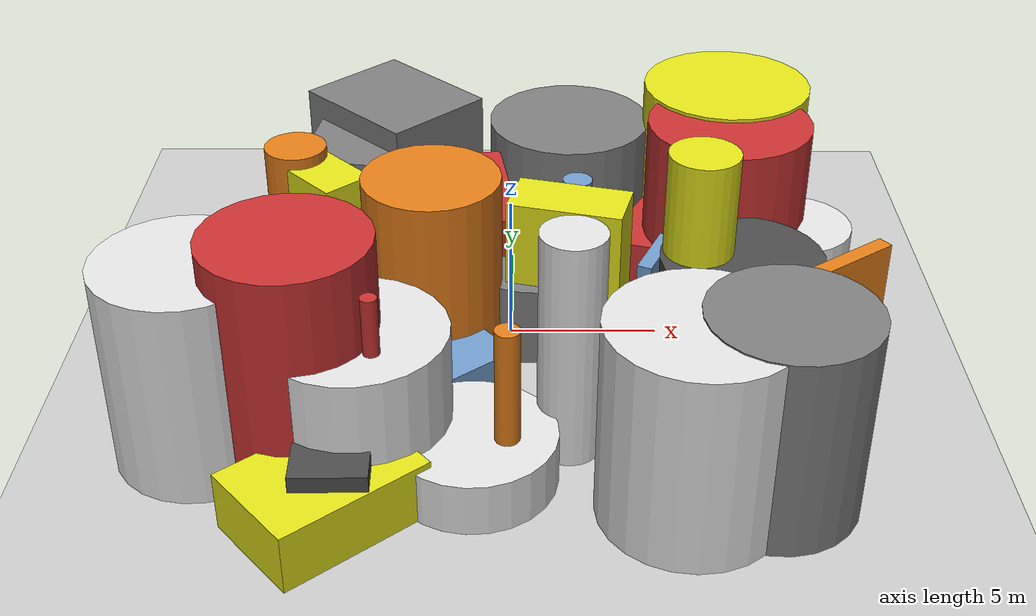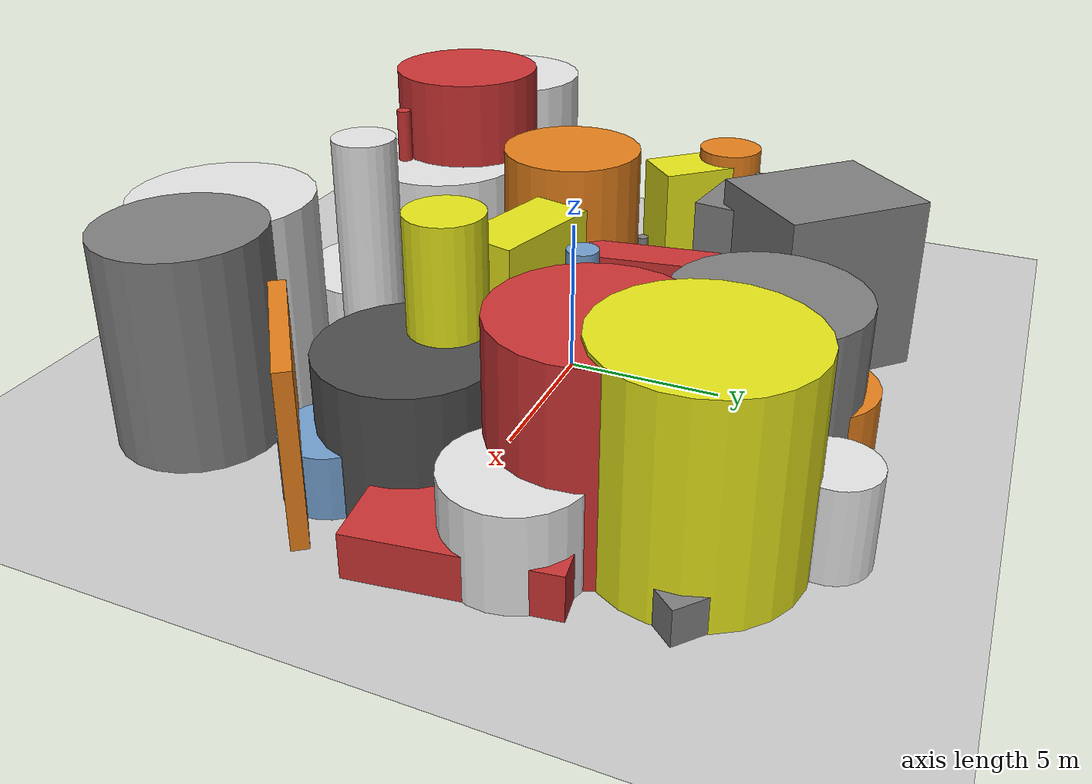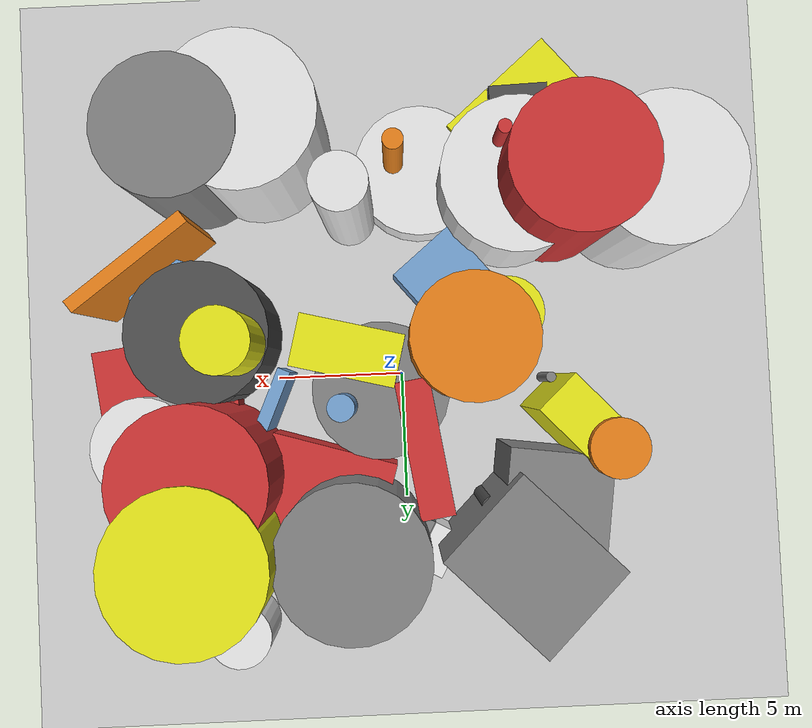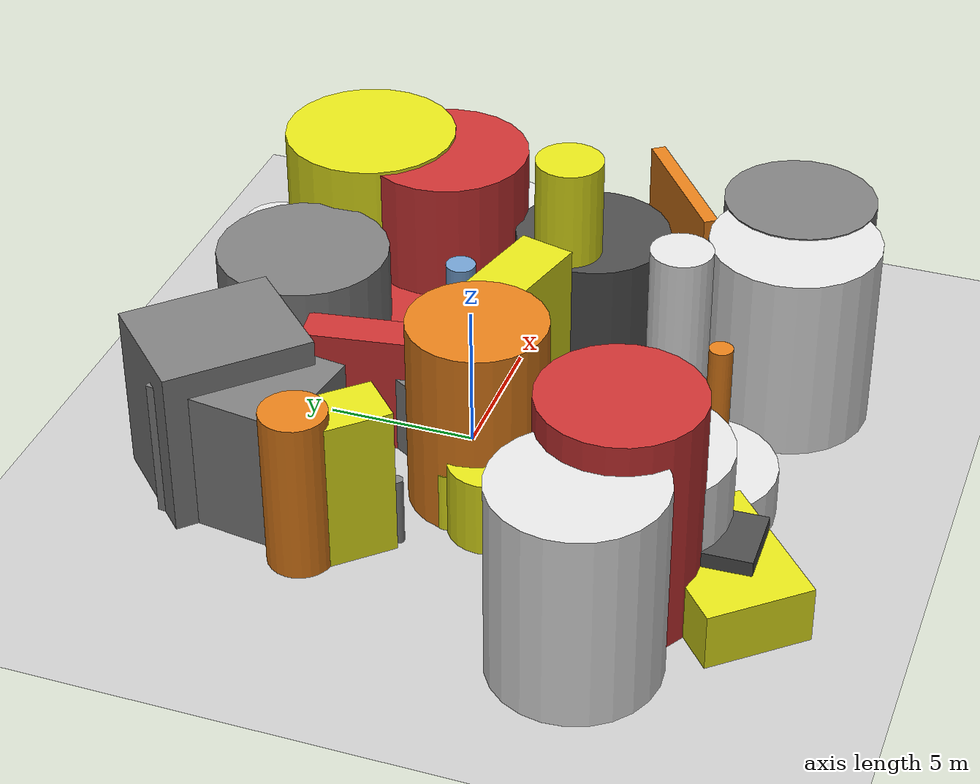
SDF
<?xml version='1.0'?>
<sdf version='1.6'>
  <world name='default'>
    <!-- Sun light -->
    <light name='sun' type='directional'>
      <cast_shadows>1</cast_shadows>
      <pose>0 0 10 0 0 0</pose>
      <diffuse>0.8 0.8 0.8 1</diffuse>
      <specular>0.2 0.2 0.2 1</specular>
      <attenuation>
        <range>1000</range>
        <constant>0.9</constant>
        <linear>0.01</linear>
        <quadratic>0.001</quadratic>
      </attenuation>
      <direction>-0.5 0.1 -0.9</direction>
    </light>

    <!-- Ground plane -->
    <model name='ground_plane'>
      <static>1</static>
      <link name='link'>
        <collision name='collision'>
          <geometry>
            <plane>
              <normal>0 0 1</normal>
              <size>100 100</size>
            </plane>
          </geometry>
          <surface>
            <contact>
              <collide_bitmask>65535</collide_bitmask>
              <ode/>
            </contact>
            <friction>
              <ode>
                <mu>100</mu>
                <mu2>50</mu2>
              </ode>
              <torsional><ode/></torsional>
            </friction>
            <bounce/>
          </surface>
          <max_contacts>10</max_contacts>
        </collision>
        <visual name='visual'>
          <cast_shadows>0</cast_shadows>
          <geometry>
            <plane>
              <normal>0 0 1</normal>
              <size>100 100</size>
            </plane>
          </geometry>
          <material>
            <script>
              <uri>file://media/materials/scripts/gazebo.material</uri>
              <n>Gazebo/Grey</n>
            </script>
          </material>
        </visual>
      </link>
    </model>

    <!-- Environment -->
    <magnetic_field>6e-06 2.3e-05 -4.2e-05</magnetic_field>
    <atmosphere type='adiabatic'/>
    <physics name='default_physics' default='0' type='ode'>
      <gravity>0 0 -9.8</gravity>
      <max_step_size>0.004</max_step_size>
      <real_time_factor>1</real_time_factor>
      <real_time_update_rate>250</real_time_update_rate>
    </physics>
    <scene>
      <ambient>0.4 0.4 0.4 1</ambient>
      <background>0.7 0.7 0.7 1</background>
      <shadows>1</shadows>
    </scene>
    <wind/>
    <spherical_coordinates>
      <surface_model>EARTH_WGS84</surface_model>
      <latitude_deg>0</latitude_deg>
      <longitude_deg>0</longitude_deg>
      <elevation>0</elevation>
      <heading_deg>0</heading_deg>
    </spherical_coordinates>

    <!-- ============ OBSTACLES (46) ============ -->
    <model name='obs_00'>
      <static>1</static>
      <link name='link'>
        <visual name='visual'>
          <geometry>
            <cylinder>
              <radius>2.5856</radius>
              <length>7.7587</length>
            </cylinder>
          </geometry>
          <material>
            <script>
              <n>Gazebo/Red</n>
              <uri>file://media/materials/scripts/gazebo.material</uri>
            </script>
            <ambient>0.8 0.2 0.2 1</ambient>
          </material>
        </visual>
        <collision name='collision'>
          <geometry>
            <cylinder>
              <radius>2.5856</radius>
              <length>7.7587</length>
            </cylinder>
          </geometry>
          <max_contacts>10</max_contacts>
          <surface>
            <contact><ode/></contact>
            <bounce/>
            <friction>
              <ode><mu>1</mu><mu2>1</mu2></ode>
              <torsional><ode/></torsional>
            </friction>
          </surface>
        </collision>
      </link>
      <pose>-6.3380 -6.8818 3.8793 0 0 0.3856</pose>
    </model>

    <model name='obs_01'>
      <static>1</static>
      <link name='link'>
        <visual name='visual'>
          <geometry>
            <cylinder>
              <radius>2.8357</radius>
              <length>6.5367</length>
            </cylinder>
          </geometry>
          <material>
            <script>
              <n>Gazebo/White</n>
              <uri>file://media/materials/scripts/gazebo.material</uri>
            </script>
            <ambient>0.9 0.9 0.9 1</ambient>
          </material>
        </visual>
        <collision name='collision'>
          <geometry>
            <cylinder>
              <radius>2.8357</radius>
              <length>6.5367</length>
            </cylinder>
          </geometry>
          <max_contacts>10</max_contacts>
          <surface>
            <contact><ode/></contact>
            <bounce/>
            <friction>
              <ode><mu>1</mu><mu2>1</mu2></ode>
              <torsional><ode/></torsional>
            </friction>
          </surface>
        </collision>
      </link>
      <pose>5.3430 -9.2949 3.2684 0 0 1.5718</pose>
    </model>

    <model name='obs_02'>
      <static>1</static>
      <link name='link'>
        <visual name='visual'>
          <geometry>
            <cylinder>
              <radius>1.4069</radius>
              <length>2.6536</length>
            </cylinder>
          </geometry>
          <material>
            <script>
              <n>Gazebo/Yellow</n>
              <uri>file://media/materials/scripts/gazebo.material</uri>
            </script>
            <ambient>0.9 0.9 0.1 1</ambient>
          </material>
        </visual>
        <collision name='collision'>
          <geometry>
            <cylinder>
              <radius>1.4069</radius>
              <length>2.6536</length>
            </cylinder>
          </geometry>
          <max_contacts>10</max_contacts>
          <surface>
            <contact><ode/></contact>
            <bounce/>
            <friction>
              <ode><mu>1</mu><mu2>1</mu2></ode>
              <torsional><ode/></torsional>
            </friction>
          </surface>
        </collision>
      </link>
      <pose>-4.1784 -2.1336 1.3268 0 0 2.0974</pose>
    </model>

    <model name='obs_03'>
      <static>1</static>
      <link name='link'>
        <visual name='visual'>
          <geometry>
            <cylinder>
              <radius>0.3477</radius>
              <length>2.8777</length>
            </cylinder>
          </geometry>
          <material>
            <script>
              <n>Gazebo/White</n>
              <uri>file://media/materials/scripts/gazebo.material</uri>
            </script>
            <ambient>0.9 0.9 0.9 1</ambient>
          </material>
        </visual>
        <collision name='collision'>
          <geometry>
            <cylinder>
              <radius>0.3477</radius>
              <length>2.8777</length>
            </cylinder>
          </geometry>
          <max_contacts>10</max_contacts>
          <surface>
            <contact><ode/></contact>
            <bounce/>
            <friction>
              <ode><mu>1</mu><mu2>1</mu2></ode>
              <torsional><ode/></torsional>
            </friction>
          </surface>
        </collision>
      </link>
      <pose>4.8884 -7.4721 1.4388 0 0 2.2593</pose>
    </model>

    <model name='obs_04'>
      <static>1</static>
      <link name='link'>
        <visual name='visual'>
          <geometry>
            <cylinder>
              <radius>2.9233</radius>
              <length>4.8845</length>
            </cylinder>
          </geometry>
          <material>
            <script>
              <n>Gazebo/Grey</n>
              <uri>file://media/materials/scripts/gazebo.material</uri>
            </script>
            <ambient>0.5 0.5 0.5 1</ambient>
          </material>
        </visual>
        <collision name='collision'>
          <geometry>
            <cylinder>
              <radius>2.9233</radius>
              <length>4.8845</length>
            </cylinder>
          </geometry>
          <max_contacts>10</max_contacts>
          <surface>
            <contact><ode/></contact>
            <bounce/>
            <friction>
              <ode><mu>1</mu><mu2>1</mu2></ode>
              <torsional><ode/></torsional>
            </friction>
          </surface>
        </collision>
      </link>
      <pose>2.0877 6.7553 2.4422 0 0 1.7359</pose>
    </model>

    <model name='obs_05'>
      <static>1</static>
      <link name='link'>
        <visual name='visual'>
          <geometry>
            <cylinder>
              <radius>1.0786</radius>
              <length>5.6129</length>
            </cylinder>
          </geometry>
          <material>
            <script>
              <n>Gazebo/Orange</n>
              <uri>file://media/materials/scripts/gazebo.material</uri>
            </script>
            <ambient>0.9 0.5 0.1 1</ambient>
          </material>
        </visual>
        <collision name='collision'>
          <geometry>
            <cylinder>
              <radius>1.0786</radius>
              <length>5.6129</length>
            </cylinder>
          </geometry>
          <max_contacts>10</max_contacts>
          <surface>
            <contact><ode/></contact>
            <bounce/>
            <friction>
              <ode><mu>1</mu><mu2>1</mu2></ode>
              <torsional><ode/></torsional>
            </friction>
          </surface>
        </collision>
      </link>
      <pose>-7.4995 2.9920 2.8064 0 0 1.2198</pose>
    </model>

    <model name='obs_06'>
      <static>1</static>
      <link name='link'>
        <visual name='visual'>
          <geometry>
            <box>
              <size>3.7670 4.9269 4.8542</size>
            </box>
          </geometry>
          <material>
            <script>
              <n>Gazebo/Grey</n>
              <uri>file://media/materials/scripts/gazebo.material</uri>
            </script>
            <ambient>0.5 0.5 0.5 1</ambient>
          </material>
        </visual>
        <collision name='collision'>
          <geometry>
            <box>
              <size>3.7670 4.9269 4.8542</size>
            </box>
          </geometry>
          <max_contacts>10</max_contacts>
          <surface>
            <contact><ode/></contact>
            <bounce/>
            <friction>
              <ode><mu>1</mu><mu2>1</mu2></ode>
              <torsional><ode/></torsional>
            </friction>
          </surface>
        </collision>
      </link>
      <pose>-5.2893 5.5421 2.4271 0 0 3.0027</pose>
    </model>

    <model name='obs_07'>
      <static>1</static>
      <link name='link'>
        <visual name='visual'>
          <geometry>
            <cylinder>
              <radius>1.0233</radius>
              <length>7.6518</length>
            </cylinder>
          </geometry>
          <material>
            <script>
              <n>Gazebo/White</n>
              <uri>file://media/materials/scripts/gazebo.material</uri>
            </script>
            <ambient>0.9 0.9 0.9 1</ambient>
          </material>
        </visual>
        <collision name='collision'>
          <geometry>
            <cylinder>
              <radius>1.0233</radius>
              <length>7.6518</length>
            </cylinder>
          </geometry>
          <max_contacts>10</max_contacts>
          <surface>
            <contact><ode/></contact>
            <bounce/>
            <friction>
              <ode><mu>1</mu><mu2>1</mu2></ode>
              <torsional><ode/></torsional>
            </friction>
          </surface>
        </collision>
      </link>
      <pose>1.8586 -6.3869 3.8259 0 0 0.9059</pose>
    </model>

    <model name='obs_08'>
      <static>1</static>
      <link name='link'>
        <visual name='visual'>
          <geometry>
            <cylinder>
              <radius>2.9897</radius>
              <length>6.4128</length>
            </cylinder>
          </geometry>
          <material>
            <script>
              <n>Gazebo/Yellow</n>
              <uri>file://media/materials/scripts/gazebo.material</uri>
            </script>
            <ambient>0.9 0.9 0.1 1</ambient>
          </material>
        </visual>
        <collision name='collision'>
          <geometry>
            <cylinder>
              <radius>2.9897</radius>
              <length>6.4128</length>
            </cylinder>
          </geometry>
          <max_contacts>10</max_contacts>
          <surface>
            <contact><ode/></contact>
            <bounce/>
            <friction>
              <ode><mu>1</mu><mu2>1</mu2></ode>
              <torsional><ode/></torsional>
            </friction>
          </surface>
        </collision>
      </link>
      <pose>7.7770 6.5085 3.2064 0 0 0.4351</pose>
    </model>

    <model name='obs_09'>
      <static>1</static>
      <link name='link'>
        <visual name='visual'>
          <geometry>
            <cylinder>
              <radius>2.5527</radius>
              <length>6.5821</length>
            </cylinder>
          </geometry>
          <material>
            <script>
              <n>Gazebo/Grey</n>
              <uri>file://media/materials/scripts/gazebo.material</uri>
            </script>
            <ambient>0.5 0.5 0.5 1</ambient>
          </material>
        </visual>
        <collision name='collision'>
          <geometry>
            <cylinder>
              <radius>2.5527</radius>
              <length>6.5821</length>
            </cylinder>
          </geometry>
          <max_contacts>10</max_contacts>
          <surface>
            <contact><ode/></contact>
            <bounce/>
            <friction>
              <ode><mu>1</mu><mu2>1</mu2></ode>
              <torsional><ode/></torsional>
            </friction>
          </surface>
        </collision>
      </link>
      <pose>7.8711 -8.8454 3.2910 0 0 1.9215</pose>
    </model>

    <model name='obs_10'>
      <static>1</static>
      <link name='link'>
        <visual name='visual'>
          <geometry>
            <cylinder>
              <radius>0.3884</radius>
              <length>2.1049</length>
            </cylinder>
          </geometry>
          <material>
            <script>
              <n>Gazebo/Yellow</n>
              <uri>file://media/materials/scripts/gazebo.material</uri>
            </script>
            <ambient>0.9 0.9 0.1 1</ambient>
          </material>
        </visual>
        <collision name='collision'>
          <geometry>
            <cylinder>
              <radius>0.3884</radius>
              <length>2.1049</length>
            </cylinder>
          </geometry>
          <max_contacts>10</max_contacts>
          <surface>
            <contact><ode/></contact>
            <bounce/>
            <friction>
              <ode><mu>1</mu><mu2>1</mu2></ode>
              <torsional><ode/></torsional>
            </friction>
          </surface>
        </collision>
      </link>
      <pose>-4.4263 -0.7832 1.0525 0 0 0.3268</pose>
    </model>

    <model name='obs_11'>
      <static>1</static>
      <link name='link'>
        <visual name='visual'>
          <geometry>
            <cylinder>
              <radius>0.3865</radius>
              <length>5.5634</length>
            </cylinder>
          </geometry>
          <material>
            <script>
              <n>Gazebo/Orange</n>
              <uri>file://media/materials/scripts/gazebo.material</uri>
            </script>
            <ambient>0.9 0.5 0.1 1</ambient>
          </material>
        </visual>
        <collision name='collision'>
          <geometry>
            <cylinder>
              <radius>0.3865</radius>
              <length>5.5634</length>
            </cylinder>
          </geometry>
          <max_contacts>10</max_contacts>
          <surface>
            <contact><ode/></contact>
            <bounce/>
            <friction>
              <ode><mu>1</mu><mu2>1</mu2></ode>
              <torsional><ode/></torsional>
            </friction>
          </surface>
        </collision>
      </link>
      <pose>-0.0267 -8.2673 2.7817 0 0 1.7286</pose>
    </model>

    <model name='obs_12'>
      <static>1</static>
      <link name='link'>
        <visual name='visual'>
          <geometry>
            <box>
              <size>5.8399 5.4281 1.3636</size>
            </box>
          </geometry>
          <material>
            <script>
              <n>Gazebo/Red</n>
              <uri>file://media/materials/scripts/gazebo.material</uri>
            </script>
            <ambient>0.8 0.2 0.2 1</ambient>
          </material>
        </visual>
        <collision name='collision'>
          <geometry>
            <box>
              <size>5.8399 5.4281 1.3636</size>
            </box>
          </geometry>
          <max_contacts>10</max_contacts>
          <surface>
            <contact><ode/></contact>
            <bounce/>
            <friction>
              <ode><mu>1</mu><mu2>1</mu2></ode>
              <torsional><ode/></torsional>
            </friction>
          </surface>
        </collision>
      </link>
      <pose>9.1936 1.2070 0.6818 0 0 1.7036</pose>
    </model>

    <model name='obs_13'>
      <static>1</static>
      <link name='link'>
        <visual name='visual'>
          <geometry>
            <cylinder>
              <radius>0.4321</radius>
              <length>1.6771</length>
            </cylinder>
          </geometry>
          <material>
            <script>
              <n>Gazebo/Orange</n>
              <uri>file://media/materials/scripts/gazebo.material</uri>
            </script>
            <ambient>0.9 0.5 0.1 1</ambient>
          </material>
        </visual>
        <collision name='collision'>
          <geometry>
            <cylinder>
              <radius>0.4321</radius>
              <length>1.6771</length>
            </cylinder>
          </geometry>
          <max_contacts>10</max_contacts>
          <surface>
            <contact><ode/></contact>
            <bounce/>
            <friction>
              <ode><mu>1</mu><mu2>1</mu2></ode>
              <torsional><ode/></torsional>
            </friction>
          </surface>
        </collision>
      </link>
      <pose>7.5044 8.4351 0.8386 0 0 3.0458</pose>
    </model>

    <model name='obs_14'>
      <static>1</static>
      <link name='link'>
        <visual name='visual'>
          <geometry>
            <cylinder>
              <radius>0.1962</radius>
              <length>2.4010</length>
            </cylinder>
          </geometry>
          <material>
            <script>
              <n>Gazebo/Grey</n>
              <uri>file://media/materials/scripts/gazebo.material</uri>
            </script>
            <ambient>0.5 0.5 0.5 1</ambient>
          </material>
        </visual>
        <collision name='collision'>
          <geometry>
            <cylinder>
              <radius>0.1962</radius>
              <length>2.4010</length>
            </cylinder>
          </geometry>
          <max_contacts>10</max_contacts>
          <surface>
            <contact><ode/></contact>
            <bounce/>
            <friction>
              <ode><mu>1</mu><mu2>1</mu2></ode>
              <torsional><ode/></torsional>
            </friction>
          </surface>
        </collision>
      </link>
      <pose>-5.7334 0.4128 1.2005 0 0 0.5645</pose>
    </model>

    <model name='obs_15'>
      <static>1</static>
      <link name='link'>
        <visual name='visual'>
          <geometry>
            <box>
              <size>5.3304 0.5091 2.7778</size>
            </box>
          </geometry>
          <material>
            <script>
              <n>Gazebo/Blue</n>
              <uri>file://media/materials/scripts/gazebo.material</uri>
            </script>
            <ambient>0.447 0.624 0.812 1</ambient>
          </material>
        </visual>
        <collision name='collision'>
          <geometry>
            <box>
              <size>5.3304 0.5091 2.7778</size>
            </box>
          </geometry>
          <max_contacts>10</max_contacts>
          <surface>
            <contact><ode/></contact>
            <bounce/>
            <friction>
              <ode><mu>1</mu><mu2>1</mu2></ode>
              <torsional><ode/></torsional>
            </friction>
          </surface>
        </collision>
      </link>
      <pose>5.5599 2.1295 1.3889 0 0 1.1583</pose>
    </model>

    <model name='obs_16'>
      <static>1</static>
      <link name='link'>
        <visual name='visual'>
          <geometry>
            <cylinder>
              <radius>2.6942</radius>
              <length>4.0747</length>
            </cylinder>
          </geometry>
          <material>
            <script>
              <n>Gazebo/DarkGrey</n>
              <uri>file://media/materials/scripts/gazebo.material</uri>
            </script>
            <ambient>0.3 0.3 0.3 1</ambient>
          </material>
        </visual>
        <collision name='collision'>
          <geometry>
            <cylinder>
              <radius>2.6942</radius>
              <length>4.0747</length>
            </cylinder>
          </geometry>
          <max_contacts>10</max_contacts>
          <surface>
            <contact><ode/></contact>
            <bounce/>
            <friction>
              <ode><mu>1</mu><mu2>1</mu2></ode>
              <torsional><ode/></torsional>
            </friction>
          </surface>
        </collision>
      </link>
      <pose>7.5231 -1.7769 2.0374 0 0 0.2915</pose>
    </model>

    <model name='obs_17'>
      <static>1</static>
      <link name='link'>
        <visual name='visual'>
          <geometry>
            <cylinder>
              <radius>2.0149</radius>
              <length>2.1289</length>
            </cylinder>
          </geometry>
          <material>
            <script>
              <n>Gazebo/Orange</n>
              <uri>file://media/materials/scripts/gazebo.material</uri>
            </script>
            <ambient>0.9 0.5 0.1 1</ambient>
          </material>
        </visual>
        <collision name='collision'>
          <geometry>
            <cylinder>
              <radius>2.0149</radius>
              <length>2.1289</length>
            </cylinder>
          </geometry>
          <max_contacts>10</max_contacts>
          <surface>
            <contact><ode/></contact>
            <bounce/>
            <friction>
              <ode><mu>1</mu><mu2>1</mu2></ode>
              <torsional><ode/></torsional>
            </friction>
          </surface>
        </collision>
      </link>
      <pose>1.7060 8.0803 1.0645 0 0 1.5565</pose>
    </model>

    <model name='obs_18'>
      <static>1</static>
      <link name='link'>
        <visual name='visual'>
          <geometry>
            <cylinder>
              <radius>2.8883</radius>
              <length>4.7474</length>
            </cylinder>
          </geometry>
          <material>
            <script>
              <n>Gazebo/White</n>
              <uri>file://media/materials/scripts/gazebo.material</uri>
            </script>
            <ambient>0.9 0.9 0.9 1</ambient>
          </material>
        </visual>
        <collision name='collision'>
          <geometry>
            <cylinder>
              <radius>2.8883</radius>
              <length>4.7474</length>
            </cylinder>
          </geometry>
          <max_contacts>10</max_contacts>
          <surface>
            <contact><ode/></contact>
            <bounce/>
            <friction>
              <ode><mu>1</mu><mu2>1</mu2></ode>
              <torsional><ode/></torsional>
            </friction>
          </surface>
        </collision>
      </link>
      <pose>-4.5623 -7.0368 2.3737 0 0 2.4886</pose>
    </model>

    <model name='obs_19'>
      <static>1</static>
      <link name='link'>
        <visual name='visual'>
          <geometry>
            <box>
              <size>4.3833 2.9355 1.7981</size>
            </box>
          </geometry>
          <material>
            <script>
              <n>Gazebo/Blue</n>
              <uri>file://media/materials/scripts/gazebo.material</uri>
            </script>
            <ambient>0.447 0.624 0.812 1</ambient>
          </material>
        </visual>
        <collision name='collision'>
          <geometry>
            <box>
              <size>4.3833 2.9355 1.7981</size>
            </box>
          </geometry>
          <max_contacts>10</max_contacts>
          <surface>
            <contact><ode/></contact>
            <bounce/>
            <friction>
              <ode><mu>1</mu><mu2>1</mu2></ode>
              <torsional><ode/></torsional>
            </friction>
          </surface>
        </collision>
      </link>
      <pose>-2.3635 -3.1011 0.8990 0 0 2.2583</pose>
    </model>

    <model name='obs_20'>
      <static>1</static>
      <link name='link'>
        <visual name='visual'>
          <geometry>
            <cylinder>
              <radius>1.4560</radius>
              <length>1.9546</length>
            </cylinder>
          </geometry>
          <material>
            <script>
              <n>Gazebo/Blue</n>
              <uri>file://media/materials/scripts/gazebo.material</uri>
            </script>
            <ambient>0.447 0.624 0.812 1</ambient>
          </material>
        </visual>
        <collision name='collision'>
          <geometry>
            <cylinder>
              <radius>1.4560</radius>
              <length>1.9546</length>
            </cylinder>
          </geometry>
          <max_contacts>10</max_contacts>
          <surface>
            <contact><ode/></contact>
            <bounce/>
            <friction>
              <ode><mu>1</mu><mu2>1</mu2></ode>
              <torsional><ode/></torsional>
            </friction>
          </surface>
        </collision>
      </link>
      <pose>9.0709 -3.4702 0.9773 0 0 0.7826</pose>
    </model>

    <model name='obs_21'>
      <static>1</static>
      <link name='link'>
        <visual name='visual'>
          <geometry>
            <cylinder>
              <radius>2.8592</radius>
              <length>6.2917</length>
            </cylinder>
          </geometry>
          <material>
            <script>
              <n>Gazebo/Red</n>
              <uri>file://media/materials/scripts/gazebo.material</uri>
            </script>
            <ambient>0.8 0.2 0.2 1</ambient>
          </material>
        </visual>
        <collision name='collision'>
          <geometry>
            <cylinder>
              <radius>2.8592</radius>
              <length>6.2917</length>
            </cylinder>
          </geometry>
          <max_contacts>10</max_contacts>
          <surface>
            <contact><ode/></contact>
            <bounce/>
            <friction>
              <ode><mu>1</mu><mu2>1</mu2></ode>
              <torsional><ode/></torsional>
            </friction>
          </surface>
        </collision>
      </link>
      <pose>7.5725 3.5980 3.1459 0 0 0.2237</pose>
    </model>

    <model name='obs_22'>
      <static>1</static>
      <link name='link'>
        <visual name='visual'>
          <geometry>
            <box>
              <size>1.2979 5.5080 1.8611</size>
            </box>
          </geometry>
          <material>
            <script>
              <n>Gazebo/Grey</n>
              <uri>file://media/materials/scripts/gazebo.material</uri>
            </script>
            <ambient>0.5 0.5 0.5 1</ambient>
          </material>
        </visual>
        <collision name='collision'>
          <geometry>
            <box>
              <size>1.2979 5.5080 1.8611</size>
            </box>
          </geometry>
          <max_contacts>10</max_contacts>
          <surface>
            <contact><ode/></contact>
            <bounce/>
            <friction>
              <ode><mu>1</mu><mu2>1</mu2></ode>
              <torsional><ode/></torsional>
            </friction>
          </surface>
        </collision>
      </link>
      <pose>-2.8446 7.5251 0.9306 0 0 1.0857</pose>
    </model>

    <model name='obs_23'>
      <static>1</static>
      <link name='link'>
        <visual name='visual'>
          <geometry>
            <box>
              <size>4.1861 2.2808 2.4547</size>
            </box>
          </geometry>
          <material>
            <script>
              <n>Gazebo/DarkGrey</n>
              <uri>file://media/materials/scripts/gazebo.material</uri>
            </script>
            <ambient>0.3 0.3 0.3 1</ambient>
          </material>
        </visual>
        <collision name='collision'>
          <geometry>
            <box>
              <size>4.1861 2.2808 2.4547</size>
            </box>
          </geometry>
          <max_contacts>10</max_contacts>
          <surface>
            <contact><ode/></contact>
            <bounce/>
            <friction>
              <ode><mu>1</mu><mu2>1</mu2></ode>
              <torsional><ode/></torsional>
            </friction>
          </surface>
        </collision>
      </link>
      <pose>-5.0555 -8.9137 1.2274 0 0 1.5974</pose>
    </model>

    <model name='obs_24'>
      <static>1</static>
      <link name='link'>
        <visual name='visual'>
          <geometry>
            <box>
              <size>4.1467 4.9819 5.7240</size>
            </box>
          </geometry>
          <material>
            <script>
              <n>Gazebo/Grey</n>
              <uri>file://media/materials/scripts/gazebo.material</uri>
            </script>
            <ambient>0.5 0.5 0.5 1</ambient>
          </material>
        </visual>
        <collision name='collision'>
          <geometry>
            <box>
              <size>4.1467 4.9819 5.7240</size>
            </box>
          </geometry>
          <max_contacts>10</max_contacts>
          <surface>
            <contact><ode/></contact>
            <bounce/>
            <friction>
              <ode><mu>1</mu><mu2>1</mu2></ode>
              <torsional><ode/></torsional>
            </friction>
          </surface>
        </collision>
      </link>
      <pose>-4.3374 6.9593 2.8620 0 0 0.7838</pose>
    </model>

    <model name='obs_25'>
      <static>1</static>
      <link name='link'>
        <visual name='visual'>
          <geometry>
            <cylinder>
              <radius>1.1682</radius>
              <length>7.6023</length>
            </cylinder>
          </geometry>
          <material>
            <script>
              <n>Gazebo/Yellow</n>
              <uri>file://media/materials/scripts/gazebo.material</uri>
            </script>
            <ambient>0.9 0.9 0.1 1</ambient>
          </material>
        </visual>
        <collision name='collision'>
          <geometry>
            <cylinder>
              <radius>1.1682</radius>
              <length>7.6023</length>
            </cylinder>
          </geometry>
          <max_contacts>10</max_contacts>
          <surface>
            <contact><ode/></contact>
            <bounce/>
            <friction>
              <ode><mu>1</mu><mu2>1</mu2></ode>
              <torsional><ode/></torsional>
            </friction>
          </surface>
        </collision>
      </link>
      <pose>6.1182 -1.3168 3.8012 0 0 1.2196</pose>
    </model>

    <model name='obs_26'>
      <static>1</static>
      <link name='link'>
        <visual name='visual'>
          <geometry>
            <cylinder>
              <radius>0.9557</radius>
              <length>2.7308</length>
            </cylinder>
          </geometry>
          <material>
            <script>
              <n>Gazebo/Grey</n>
              <uri>file://media/materials/scripts/gazebo.material</uri>
            </script>
            <ambient>0.5 0.5 0.5 1</ambient>
          </material>
        </visual>
        <collision name='collision'>
          <geometry>
            <cylinder>
              <radius>0.9557</radius>
              <length>2.7308</length>
            </cylinder>
          </geometry>
          <max_contacts>10</max_contacts>
          <surface>
            <contact><ode/></contact>
            <bounce/>
            <friction>
              <ode><mu>1</mu><mu2>1</mu2></ode>
              <torsional><ode/></torsional>
            </friction>
          </surface>
        </collision>
      </link>
      <pose>-5.3868 -6.4048 1.3654 0 0 1.6760</pose>
    </model>

    <model name='obs_27'>
      <static>1</static>
      <link name='link'>
        <visual name='visual'>
          <geometry>
            <cylinder>
              <radius>1.1986</radius>
              <length>2.8413</length>
            </cylinder>
          </geometry>
          <material>
            <script>
              <n>Gazebo/White</n>
              <uri>file://media/materials/scripts/gazebo.material</uri>
            </script>
            <ambient>0.9 0.9 0.9 1</ambient>
          </material>
        </visual>
        <collision name='collision'>
          <geometry>
            <cylinder>
              <radius>1.1986</radius>
              <length>2.8413</length>
            </cylinder>
          </geometry>
          <max_contacts>10</max_contacts>
          <surface>
            <contact><ode/></contact>
            <bounce/>
            <friction>
              <ode><mu>1</mu><mu2>1</mu2></ode>
              <torsional><ode/></torsional>
            </friction>
          </surface>
        </collision>
      </link>
      <pose>6.5281 9.6727 1.4207 0 0 2.7635</pose>
    </model>

    <model name='obs_28'>
      <static>1</static>
      <link name='link'>
        <visual name='visual'>
          <geometry>
            <box>
              <size>0.5084 5.1976 5.3078</size>
            </box>
          </geometry>
          <material>
            <script>
              <n>Gazebo/Orange</n>
              <uri>file://media/materials/scripts/gazebo.material</uri>
            </script>
            <ambient>0.9 0.5 0.1 1</ambient>
          </material>
        </visual>
        <collision name='collision'>
          <geometry>
            <box>
              <size>0.5084 5.1976 5.3078</size>
            </box>
          </geometry>
          <max_contacts>10</max_contacts>
          <surface>
            <contact><ode/></contact>
            <bounce/>
            <friction>
              <ode><mu>1</mu><mu2>1</mu2></ode>
              <torsional><ode/></torsional>
            </friction>
          </surface>
        </collision>
      </link>
      <pose>9.6516 -4.3749 2.6539 0 0 2.2025</pose>
    </model>

    <model name='obs_29'>
      <static>1</static>
      <link name='link'>
        <visual name='visual'>
          <geometry>
            <box>
              <size>3.8014 1.9043 5.7253</size>
            </box>
          </geometry>
          <material>
            <script>
              <n>Gazebo/Yellow</n>
              <uri>file://media/materials/scripts/gazebo.material</uri>
            </script>
            <ambient>0.9 0.9 0.1 1</ambient>
          </material>
        </visual>
        <collision name='collision'>
          <geometry>
            <box>
              <size>3.8014 1.9043 5.7253</size>
            </box>
          </geometry>
          <max_contacts>10</max_contacts>
          <surface>
            <contact><ode/></contact>
            <bounce/>
            <friction>
              <ode><mu>1</mu><mu2>1</mu2></ode>
              <torsional><ode/></torsional>
            </friction>
          </surface>
        </collision>
      </link>
      <pose>1.9180 -0.8608 2.8626 0 0 2.8891</pose>
    </model>

    <model name='obs_30'>
      <static>1</static>
      <link name='link'>
        <visual name='visual'>
          <geometry>
            <box>
              <size>1.1352 1.8188 2.1766</size>
            </box>
          </geometry>
          <material>
            <script>
              <n>Gazebo/White</n>
              <uri>file://media/materials/scripts/gazebo.material</uri>
            </script>
            <ambient>0.9 0.9 0.9 1</ambient>
          </material>
        </visual>
        <collision name='collision'>
          <geometry>
            <box>
              <size>1.1352 1.8188 2.1766</size>
            </box>
          </geometry>
          <max_contacts>10</max_contacts>
          <surface>
            <contact><ode/></contact>
            <bounce/>
            <friction>
              <ode><mu>1</mu><mu2>1</mu2></ode>
              <torsional><ode/></torsional>
            </friction>
          </surface>
        </collision>
      </link>
      <pose>-1.1246 6.8814 1.0883 0 0 2.6410</pose>
    </model>

    <model name='obs_31'>
      <static>1</static>
      <link name='link'>
        <visual name='visual'>
          <geometry>
            <cylinder>
              <radius>2.6232</radius>
              <length>2.7936</length>
            </cylinder>
          </geometry>
          <material>
            <script>
              <n>Gazebo/Grey</n>
              <uri>file://media/materials/scripts/gazebo.material</uri>
            </script>
            <ambient>0.5 0.5 0.5 1</ambient>
          </material>
        </visual>
        <collision name='collision'>
          <geometry>
            <cylinder>
              <radius>2.6232</radius>
              <length>2.7936</length>
            </cylinder>
          </geometry>
          <max_contacts>10</max_contacts>
          <surface>
            <contact><ode/></contact>
            <bounce/>
            <friction>
              <ode><mu>1</mu><mu2>1</mu2></ode>
              <torsional><ode/></torsional>
            </friction>
          </surface>
        </collision>
      </link>
      <pose>0.8268 0.6290 1.3968 0 0 2.7233</pose>
    </model>

    <model name='obs_32'>
      <static>1</static>
      <link name='link'>
        <visual name='visual'>
          <geometry>
            <cylinder>
              <radius>0.9055</radius>
              <length>3.4543</length>
            </cylinder>
          </geometry>
          <material>
            <script>
              <n>Gazebo/DarkGrey</n>
              <uri>file://media/materials/scripts/gazebo.material</uri>
            </script>
            <ambient>0.3 0.3 0.3 1</ambient>
          </material>
        </visual>
        <collision name='collision'>
          <geometry>
            <cylinder>
              <radius>0.9055</radius>
              <length>3.4543</length>
            </cylinder>
          </geometry>
          <max_contacts>10</max_contacts>
          <surface>
            <contact><ode/></contact>
            <bounce/>
            <friction>
              <ode><mu>1</mu><mu2>1</mu2></ode>
              <torsional><ode/></torsional>
            </friction>
          </surface>
        </collision>
      </link>
      <pose>6.8521 -0.0731 1.7272 0 0 2.5822</pose>
    </model>

    <model name='obs_33'>
      <static>1</static>
      <link name='link'>
        <visual name='visual'>
          <geometry>
            <box>
              <size>3.5459 5.1213 1.9352</size>
            </box>
          </geometry>
          <material>
            <script>
              <n>Gazebo/Yellow</n>
              <uri>file://media/materials/scripts/gazebo.material</uri>
            </script>
            <ambient>0.9 0.9 0.1 1</ambient>
          </material>
        </visual>
        <collision name='collision'>
          <geometry>
            <box>
              <size>3.5459 5.1213 1.9352</size>
            </box>
          </geometry>
          <max_contacts>10</max_contacts>
          <surface>
            <contact><ode/></contact>
            <bounce/>
            <friction>
              <ode><mu>1</mu><mu2>1</mu2></ode>
              <torsional><ode/></torsional>
            </friction>
          </surface>
        </collision>
      </link>
      <pose>-5.3089 -9.9506 0.9676 0 0 2.2773</pose>
    </model>

    <model name='obs_34'>
      <static>1</static>
      <link name='link'>
        <visual name='visual'>
          <geometry>
            <cylinder>
              <radius>2.2726</radius>
              <length>6.6191</length>
            </cylinder>
          </geometry>
          <material>
            <script>
              <n>Gazebo/Orange</n>
              <uri>file://media/materials/scripts/gazebo.material</uri>
            </script>
            <ambient>0.9 0.5 0.1 1</ambient>
          </material>
        </visual>
        <collision name='collision'>
          <geometry>
            <cylinder>
              <radius>2.2726</radius>
              <length>6.6191</length>
            </cylinder>
          </geometry>
          <max_contacts>10</max_contacts>
          <surface>
            <contact><ode/></contact>
            <bounce/>
            <friction>
              <ode><mu>1</mu><mu2>1</mu2></ode>
              <torsional><ode/></torsional>
            </friction>
          </surface>
        </collision>
      </link>
      <pose>-2.5467 -1.1168 3.3096 0 0 2.6494</pose>
    </model>

    <model name='obs_35'>
      <static>1</static>
      <link name='link'>
        <visual name='visual'>
          <geometry>
            <box>
              <size>2.5931 2.8681 1.0930</size>
            </box>
          </geometry>
          <material>
            <script>
              <n>Gazebo/Grey</n>
              <uri>file://media/materials/scripts/gazebo.material</uri>
            </script>
            <ambient>0.5 0.5 0.5 1</ambient>
          </material>
        </visual>
        <collision name='collision'>
          <geometry>
            <box>
              <size>2.5931 2.8681 1.0930</size>
            </box>
          </geometry>
          <max_contacts>10</max_contacts>
          <surface>
            <contact><ode/></contact>
            <bounce/>
            <friction>
              <ode><mu>1</mu><mu2>1</mu2></ode>
              <torsional><ode/></torsional>
            </friction>
          </surface>
        </collision>
      </link>
      <pose>9.3756 6.7741 0.5465 0 0 2.4286</pose>
    </model>

    <model name='obs_36'>
      <static>1</static>
      <link name='link'>
        <visual name='visual'>
          <geometry>
            <cylinder>
              <radius>0.4259</radius>
              <length>3.6630</length>
            </cylinder>
          </geometry>
          <material>
            <script>
              <n>Gazebo/DarkGrey</n>
              <uri>file://media/materials/scripts/gazebo.material</uri>
            </script>
            <ambient>0.3 0.3 0.3 1</ambient>
          </material>
        </visual>
        <collision name='collision'>
          <geometry>
            <cylinder>
              <radius>0.4259</radius>
              <length>3.6630</length>
            </cylinder>
          </geometry>
          <max_contacts>10</max_contacts>
          <surface>
            <contact><ode/></contact>
            <bounce/>
            <friction>
              <ode><mu>1</mu><mu2>1</mu2></ode>
              <torsional><ode/></torsional>
            </friction>
          </surface>
        </collision>
      </link>
      <pose>-3.1397 5.1331 1.8315 0 0 1.5592</pose>
    </model>

    <model name='obs_37'>
      <static>1</static>
      <link name='link'>
        <visual name='visual'>
          <geometry>
            <cylinder>
              <radius>2.7005</radius>
              <length>6.7654</length>
            </cylinder>
          </geometry>
          <material>
            <script>
              <n>Gazebo/White</n>
              <uri>file://media/materials/scripts/gazebo.material</uri>
            </script>
            <ambient>0.9 0.9 0.9 1</ambient>
          </material>
        </visual>
        <collision name='collision'>
          <geometry>
            <cylinder>
              <radius>2.7005</radius>
              <length>6.7654</length>
            </cylinder>
          </geometry>
          <max_contacts>10</max_contacts>
          <surface>
            <contact><ode/></contact>
            <bounce/>
            <friction>
              <ode><mu>1</mu><mu2>1</mu2></ode>
              <torsional><ode/></torsional>
            </friction>
          </surface>
        </collision>
      </link>
      <pose>-9.4563 -6.5705 3.3827 0 0 1.2609</pose>
    </model>

    <model name='obs_38'>
      <static>1</static>
      <link name='link'>
        <visual name='visual'>
          <geometry>
            <box>
              <size>1.3002 5.1282 4.1812</size>
            </box>
          </geometry>
          <material>
            <script>
              <n>Gazebo/Red</n>
              <uri>file://media/materials/scripts/gazebo.material</uri>
            </script>
            <ambient>0.8 0.2 0.2 1</ambient>
          </material>
        </visual>
        <collision name='collision'>
          <geometry>
            <box>
              <size>1.3002 5.1282 4.1812</size>
            </box>
          </geometry>
          <max_contacts>10</max_contacts>
          <surface>
            <contact><ode/></contact>
            <bounce/>
            <friction>
              <ode><mu>1</mu><mu2>1</mu2></ode>
              <torsional><ode/></torsional>
            </friction>
          </surface>
        </collision>
      </link>
      <pose>-0.7150 2.8252 2.0906 0 0 0.1487</pose>
    </model>

    <model name='obs_39'>
      <static>1</static>
      <link name='link'>
        <visual name='visual'>
          <geometry>
            <cylinder>
              <radius>0.4998</radius>
              <length>5.3271</length>
            </cylinder>
          </geometry>
          <material>
            <script>
              <n>Gazebo/Blue</n>
              <uri>file://media/materials/scripts/gazebo.material</uri>
            </script>
            <ambient>0.447 0.624 0.812 1</ambient>
          </material>
        </visual>
        <collision name='collision'>
          <geometry>
            <cylinder>
              <radius>0.4998</radius>
              <length>5.3271</length>
            </cylinder>
          </geometry>
          <max_contacts>10</max_contacts>
          <surface>
            <contact><ode/></contact>
            <bounce/>
            <friction>
              <ode><mu>1</mu><mu2>1</mu2></ode>
              <torsional><ode/></torsional>
            </friction>
          </surface>
        </collision>
      </link>
      <pose>2.2289 1.1621 2.6636 0 0 0.1478</pose>
    </model>

    <model name='obs_40'>
      <static>1</static>
      <link name='link'>
        <visual name='visual'>
          <geometry>
            <cylinder>
              <radius>2.5755</radius>
              <length>1.7276</length>
            </cylinder>
          </geometry>
          <material>
            <script>
              <n>Gazebo/White</n>
              <uri>file://media/materials/scripts/gazebo.material</uri>
            </script>
            <ambient>0.9 0.9 0.9 1</ambient>
          </material>
        </visual>
        <collision name='collision'>
          <geometry>
            <cylinder>
              <radius>2.5755</radius>
              <length>1.7276</length>
            </cylinder>
          </geometry>
          <max_contacts>10</max_contacts>
          <surface>
            <contact><ode/></contact>
            <bounce/>
            <friction>
              <ode><mu>1</mu><mu2>1</mu2></ode>
              <torsional><ode/></torsional>
            </friction>
          </surface>
        </collision>
      </link>
      <pose>-1.0562 -7.9699 0.8638 0 0 0.7279</pose>
    </model>

    <model name='obs_41'>
      <static>1</static>
      <link name='link'>
        <visual name='visual'>
          <geometry>
            <cylinder>
              <radius>0.7539</radius>
              <length>3.4538</length>
            </cylinder>
          </geometry>
          <material>
            <script>
              <n>Gazebo/Blue</n>
              <uri>file://media/materials/scripts/gazebo.material</uri>
            </script>
            <ambient>0.447 0.624 0.812 1</ambient>
          </material>
        </visual>
        <collision name='collision'>
          <geometry>
            <cylinder>
              <radius>0.7539</radius>
              <length>3.4538</length>
            </cylinder>
          </geometry>
          <max_contacts>10</max_contacts>
          <surface>
            <contact><ode/></contact>
            <bounce/>
            <friction>
              <ode><mu>1</mu><mu2>1</mu2></ode>
              <torsional><ode/></torsional>
            </friction>
          </surface>
        </collision>
      </link>
      <pose>6.0052 4.7639 1.7269 0 0 2.0402</pose>
    </model>

    <model name='obs_42'>
      <static>1</static>
      <link name='link'>
        <visual name='visual'>
          <geometry>
            <cylinder>
              <radius>0.2533</radius>
              <length>6.6265</length>
            </cylinder>
          </geometry>
          <material>
            <script>
              <n>Gazebo/Red</n>
              <uri>file://media/materials/scripts/gazebo.material</uri>
            </script>
            <ambient>0.8 0.2 0.2 1</ambient>
          </material>
        </visual>
        <collision name='collision'>
          <geometry>
            <cylinder>
              <radius>0.2533</radius>
              <length>6.6265</length>
            </cylinder>
          </geometry>
          <max_contacts>10</max_contacts>
          <surface>
            <contact><ode/></contact>
            <bounce/>
            <friction>
              <ode><mu>1</mu><mu2>1</mu2></ode>
              <torsional><ode/></torsional>
            </friction>
          </surface>
        </collision>
      </link>
      <pose>-3.8896 -8.2507 3.3133 0 0 3.0939</pose>
    </model>

    <model name='obs_43'>
      <static>1</static>
      <link name='link'>
        <visual name='visual'>
          <geometry>
            <cylinder>
              <radius>1.9968</radius>
              <length>2.8928</length>
            </cylinder>
          </geometry>
          <material>
            <script>
              <n>Gazebo/White</n>
              <uri>file://media/materials/scripts/gazebo.material</uri>
            </script>
            <ambient>0.9 0.9 0.9 1</ambient>
          </material>
        </visual>
        <collision name='collision'>
          <geometry>
            <cylinder>
              <radius>1.9968</radius>
              <length>2.8928</length>
            </cylinder>
          </geometry>
          <max_contacts>10</max_contacts>
          <surface>
            <contact><ode/></contact>
            <bounce/>
            <friction>
              <ode><mu>1</mu><mu2>1</mu2></ode>
              <torsional><ode/></torsional>
            </friction>
          </surface>
        </collision>
      </link>
      <pose>9.9498 2.4816 1.4464 0 0 0.5661</pose>
    </model>

    <model name='obs_44'>
      <static>1</static>
      <link name='link'>
        <visual name='visual'>
          <geometry>
            <box>
              <size>1.8470 2.6044 5.2243</size>
            </box>
          </geometry>
          <material>
            <script>
              <n>Gazebo/Yellow</n>
              <uri>file://media/materials/scripts/gazebo.material</uri>
            </script>
            <ambient>0.9 0.9 0.1 1</ambient>
          </material>
        </visual>
        <collision name='collision'>
          <geometry>
            <box>
              <size>1.8470 2.6044 5.2243</size>
            </box>
          </geometry>
          <max_contacts>10</max_contacts>
          <surface>
            <contact><ode/></contact>
            <bounce/>
            <friction>
              <ode><mu>1</mu><mu2>1</mu2></ode>
              <torsional><ode/></torsional>
            </friction>
          </surface>
        </collision>
      </link>
      <pose>-6.3505 1.8708 2.6121 0 0 0.7505</pose>
    </model>

    <model name='obs_45'>
      <static>1</static>
      <link name='link'>
        <visual name='visual'>
          <geometry>
            <box>
              <size>3.7106 4.9797 2.0868</size>
            </box>
          </geometry>
          <material>
            <script>
              <n>Gazebo/Red</n>
              <uri>file://media/materials/scripts/gazebo.material</uri>
            </script>
            <ambient>0.8 0.2 0.2 1</ambient>
          </material>
        </visual>
        <collision name='collision'>
          <geometry>
            <box>
              <size>3.7106 4.9797 2.0868</size>
            </box>
          </geometry>
          <max_contacts>10</max_contacts>
          <surface>
            <contact><ode/></contact>
            <bounce/>
            <friction>
              <ode><mu>1</mu><mu2>1</mu2></ode>
              <torsional><ode/></torsional>
            </friction>
          </surface>
        </collision>
      </link>
      <pose>3.2371 4.5807 1.0434 0 0 1.2761</pose>
    </model>

    <!-- GUI camera -->
    <gui fullscreen='0'>
      <camera name='user_camera'>
        <pose>-15 0 18 0 0.85 0.15</pose>
        <view_controller>orbit</view_controller>
        <projection_type>perspective</projection_type>
      </camera>
    </gui>
  </world>
</sdf>
